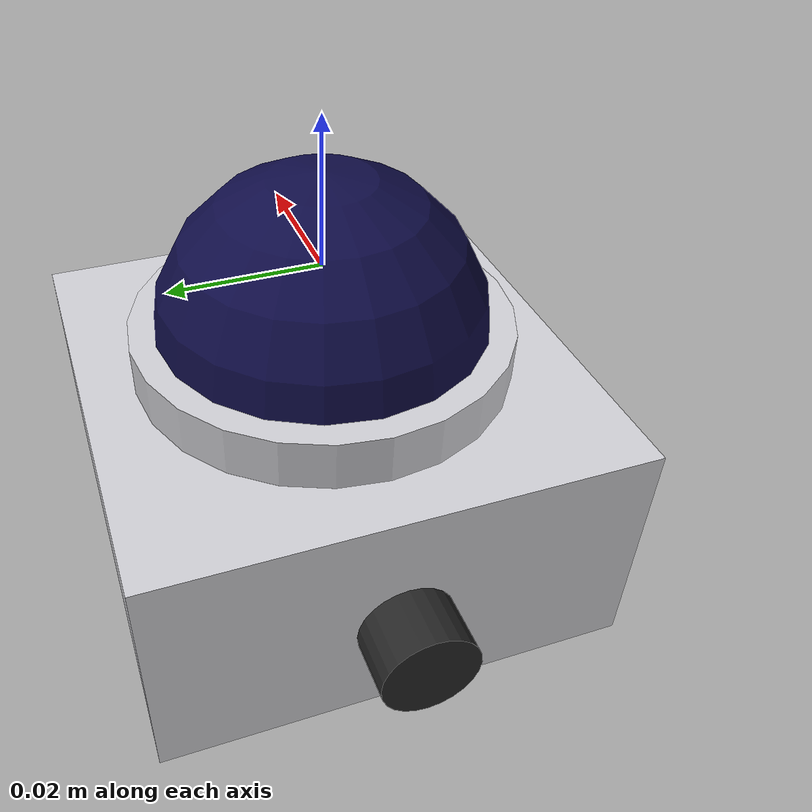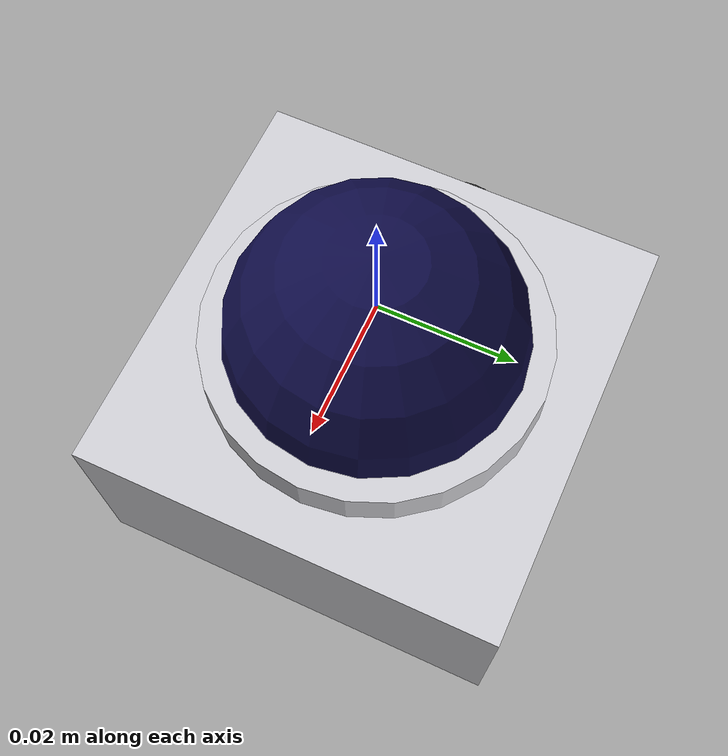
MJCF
<mujoco model="mid360">
  <compiler angle="radian" autolimits="true"/>

  <asset>
    <material name="mid360_body" rgba="0.82 0.82 0.84 1" specular="0.4" shininess="0.3"/>
    <material name="mid360_window" rgba="0.06 0.05 0.28 1" specular="0.7" shininess="0.7"/>
    <material name="mid360_connector" rgba="0.15 0.15 0.15 1"/>
  </asset>

  <worldbody>
    <body name="mount">
      <!-- 265 g (manual, "Specifications", p. 20). The manual gives no inertia: a uniform solid over
           the 65 x 65 x 60 mm envelope, centred at half height. -->
      <inertial pos="0 0 -0.017" mass="0.265" diaginertia="0.0001728 0.0001728 0.0001866"/>
      <!-- Finned body below the ring, bottom face at z -0.047. -->
      <geom name="mid360_body" type="box" pos="0 0 -0.03065" size="0.0325 0.0325 0.01635"
            material="mid360_body"/>
      <!-- Knurled ring the dome sits in, z -0.0143 .. -0.0075. -->
      <geom name="mid360_ring" type="cylinder" pos="0 0 -0.0109" size="0.0255 0.0034"
            material="mid360_body"/>
      <!-- Optical window: top at z +0.013 (60.0 - 47.0 mm). -->
      <geom name="mid360_dome" type="sphere" pos="0 0 -0.0094" size="0.0224" material="mid360_window"/>
      <!-- M12 connector on -x, protruding 8.0 mm (73.0 - 65.0), axis 14.3 mm above the bottom. -->
      <geom name="mid360_connector" type="cylinder" pos="-0.0365 0 -0.0327"
            quat="0.7071068 0 0.7071068 0" size="0.0065 0.004" material="mid360_connector"/>
      <!-- The point-cloud origin O, where the rays start. Keep in step with the manifest's `frames:`. -->
      <site name="mid360" pos="0 0 0" size="0.005"/>
    </body>
  </worldbody>
</mujoco>
